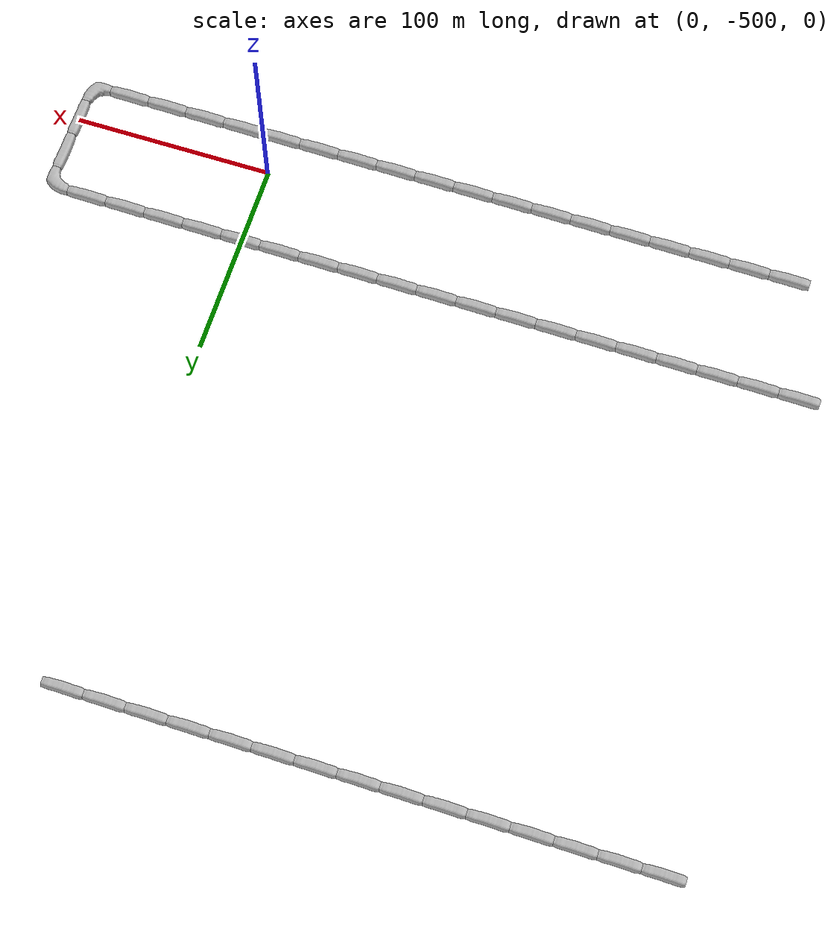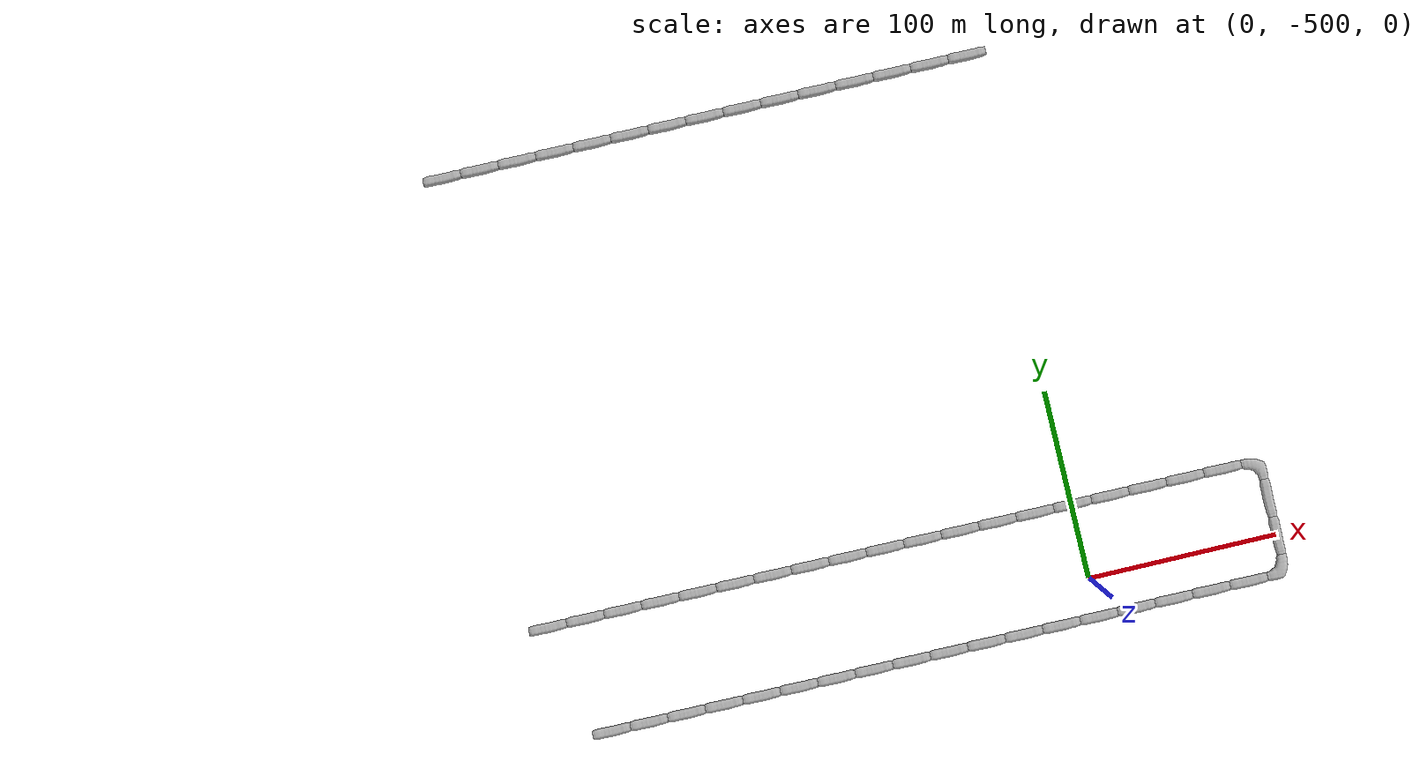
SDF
<sdf version="1.6">
 <world name="cave_32000_16">
  <include>
   <static>true</static>
   <name>cave_-13_-26</name>
   <pose>-260 -520 0 0 0 1.5707963267948966</pose>
   <uri>model://cave_straight_20m</uri>
  </include>
  <include>
   <static>true</static>
   <name>cave_-12_-26</name>
   <pose>-240 -520 0 0 0 1.5707963267948966</pose>
   <uri>model://cave_straight_20m</uri>
  </include>
  <include>
   <static>true</static>
   <name>cave_-11_-26</name>
   <pose>-220 -520 0 0 0 1.5707963267948966</pose>
   <uri>model://cave_straight_20m</uri>
  </include>
  <include>
   <static>true</static>
   <name>cave_-10_-26</name>
   <pose>-200 -520 0 0 0 1.5707963267948966</pose>
   <uri>model://cave_straight_20m</uri>
  </include>
  <include>
   <static>true</static>
   <name>cave_-9_-26</name>
   <pose>-180 -520 0 0 0 1.5707963267948966</pose>
   <uri>model://cave_straight_20m</uri>
  </include>
  <include>
   <static>true</static>
   <name>cave_-8_-26</name>
   <pose>-160 -520 0 0 0 1.5707963267948966</pose>
   <uri>model://cave_straight_20m</uri>
  </include>
  <include>
   <static>true</static>
   <name>cave_-7_-26</name>
   <pose>-140 -520 0 0 0 1.5707963267948966</pose>
   <uri>model://cave_straight_20m</uri>
  </include>
  <include>
   <static>true</static>
   <name>cave_-6_-26</name>
   <pose>-120 -520 0 0 0 1.5707963267948966</pose>
   <uri>model://cave_straight_20m</uri>
  </include>
  <include>
   <static>true</static>
   <name>cave_-5_-26</name>
   <pose>-100 -520 0 0 0 1.5707963267948966</pose>
   <uri>model://cave_straight_20m</uri>
  </include>
  <include>
   <static>true</static>
   <name>cave_-4_-26</name>
   <pose>-80 -520 0 0 0 1.5707963267948966</pose>
   <uri>model://cave_straight_20m</uri>
  </include>
  <include>
   <static>true</static>
   <name>cave_-3_-26</name>
   <pose>-60 -520 0 0 0 1.5707963267948966</pose>
   <uri>model://cave_straight_20m</uri>
  </include>
  <include>
   <static>true</static>
   <name>cave_-2_-26</name>
   <pose>-40 -520 0 0 0 1.5707963267948966</pose>
   <uri>model://cave_straight_20m</uri>
  </include>
  <include>
   <static>true</static>
   <name>cave_-1_-26</name>
   <pose>-20 -520 0 0 0 1.5707963267948966</pose>
   <uri>model://cave_straight_20m</uri>
  </include>
  <include>
   <static>true</static>
   <name>cave_0_-26</name>
   <pose>0 -520 0 0 0 1.5707963267948966</pose>
   <uri>model://cave_straight_20m</uri>
  </include>
  <include>
   <static>true</static>
   <name>cave_1_-26</name>
   <pose>20 -520 0 0 0 1.5707963267948966</pose>
   <uri>model://cave_straight_20m</uri>
  </include>
  <include>
   <static>true</static>
   <name>cave_2_-26</name>
   <pose>40 -520 0 0 0 1.5707963267948966</pose>
   <uri>model://cave_straight_20m</uri>
  </include>
  <include>
   <static>true</static>
   <name>cave_3_-26</name>
   <pose>60 -520 0 0 0 1.5707963267948966</pose>
   <uri>model://cave_straight_20m</uri>
  </include>
  <include>
   <static>true</static>
   <name>cave_4_-26</name>
   <pose>80 -520 0 0 0 1.5707963267948966</pose>
   <uri>model://cave_straight_20m</uri>
  </include>
  <include>
   <static>true</static>
   <name>cave_5_-26</name>
   <pose>100 -520 0 0 0 1.5707963267948966</pose>
   <uri>model://cave_L_20m</uri>
  </include>
  <include>
   <static>true</static>
   <name>cave_5_-25</name>
   <pose>100 -500 0 0 0 0.0</pose>
   <uri>model://cave_straight_20m</uri>
  </include>
  <include>
   <static>true</static>
   <name>cave_5_-24</name>
   <pose>100 -480 0 0 0 0.0</pose>
   <uri>model://cave_straight_20m</uri>
  </include>
  <include>
   <static>true</static>
   <name>cave_5_-23</name>
   <pose>100 -460 0 0 0 3.141592653589793</pose>
   <uri>model://cave_L_20m</uri>
  </include>
  <include>
   <static>true</static>
   <name>cave_4_-23</name>
   <pose>80 -460 0 0 0 1.5707963267948966</pose>
   <uri>model://cave_straight_20m</uri>
  </include>
  <include>
   <static>true</static>
   <name>cave_3_-23</name>
   <pose>60 -460 0 0 0 1.5707963267948966</pose>
   <uri>model://cave_straight_20m</uri>
  </include>
  <include>
   <static>true</static>
   <name>cave_2_-23</name>
   <pose>40 -460 0 0 0 1.5707963267948966</pose>
   <uri>model://cave_straight_20m</uri>
  </include>
  <include>
   <static>true</static>
   <name>cave_1_-23</name>
   <pose>20 -460 0 0 0 1.5707963267948966</pose>
   <uri>model://cave_straight_20m</uri>
  </include>
  <include>
   <static>true</static>
   <name>cave_0_-23</name>
   <pose>0 -460 0 0 0 1.5707963267948966</pose>
   <uri>model://cave_straight_20m</uri>
  </include>
  <include>
   <static>true</static>
   <name>cave_-1_-23</name>
   <pose>-20 -460 0 0 0 1.5707963267948966</pose>
   <uri>model://cave_straight_20m</uri>
  </include>
  <include>
   <static>true</static>
   <name>cave_-2_-23</name>
   <pose>-40 -460 0 0 0 1.5707963267948966</pose>
   <uri>model://cave_straight_20m</uri>
  </include>
  <include>
   <static>true</static>
   <name>cave_-3_-23</name>
   <pose>-60 -460 0 0 0 1.5707963267948966</pose>
   <uri>model://cave_straight_20m</uri>
  </include>
  <include>
   <static>true</static>
   <name>cave_-4_-23</name>
   <pose>-80 -460 0 0 0 1.5707963267948966</pose>
   <uri>model://cave_straight_20m</uri>
  </include>
  <include>
   <static>true</static>
   <name>cave_-5_-23</name>
   <pose>-100 -460 0 0 0 1.5707963267948966</pose>
   <uri>model://cave_straight_20m</uri>
  </include>
  <include>
   <static>true</static>
   <name>cave_-6_-23</name>
   <pose>-120 -460 0 0 0 1.5707963267948966</pose>
   <uri>model://cave_straight_20m</uri>
  </include>
  <include>
   <static>true</static>
   <name>cave_-7_-23</name>
   <pose>-140 -460 0 0 0 1.5707963267948966</pose>
   <uri>model://cave_straight_20m</uri>
  </include>
  <include>
   <static>true</static>
   <name>cave_-8_-23</name>
   <pose>-160 -460 0 0 0 1.5707963267948966</pose>
   <uri>model://cave_straight_20m</uri>
  </include>
  <include>
   <static>true</static>
   <name>cave_-9_-23</name>
   <pose>-180 -460 0 0 0 1.5707963267948966</pose>
   <uri>model://cave_straight_20m</uri>
  </include>
  <include>
   <static>true</static>
   <name>cave_-10_-23</name>
   <pose>-200 -460 0 0 0 1.5707963267948966</pose>
   <uri>model://cave_straight_20m</uri>
  </include>
  <include>
   <static>true</static>
   <name>cave_-11_-23</name>
   <pose>-220 -460 0 0 0 1.5707963267948966</pose>
   <uri>model://cave_straight_20m</uri>
  </include>
  <include>
   <static>true</static>
   <name>cave_-12_-23</name>
   <pose>-240 -460 0 0 0 1.5707963267948966</pose>
   <uri>model://cave_straight_20m</uri>
  </include>
  <include>
   <static>true</static>
   <name>cave_-13_-23</name>
   <pose>-260 -460 0 0 0 1.5707963267948966</pose>
   <uri>model://cave_straight_20m</uri>
  </include>
  <include>
   <static>true</static>
   <name>cave_-14_-23</name>
   <pose>-280 -460 0 0 0 1.5707963267948966</pose>
   <uri>model://cave_straight_20m</uri>
  </include>
  <include>
   <static>true</static>
   <name>cave_-14_-11</name>
   <pose>-280 -220 0 0 0 1.5707963267948966</pose>
   <uri>model://cave_straight_20m</uri>
  </include>
  <include>
   <static>true</static>
   <name>cave_-13_-11</name>
   <pose>-260 -220 0 0 0 1.5707963267948966</pose>
   <uri>model://cave_straight_20m</uri>
  </include>
  <include>
   <static>true</static>
   <name>cave_-12_-11</name>
   <pose>-240 -220 0 0 0 1.5707963267948966</pose>
   <uri>model://cave_straight_20m</uri>
  </include>
  <include>
   <static>true</static>
   <name>cave_-11_-11</name>
   <pose>-220 -220 0 0 0 1.5707963267948966</pose>
   <uri>model://cave_straight_20m</uri>
  </include>
  <include>
   <static>true</static>
   <name>cave_-10_-11</name>
   <pose>-200 -220 0 0 0 1.5707963267948966</pose>
   <uri>model://cave_straight_20m</uri>
  </include>
  <include>
   <static>true</static>
   <name>cave_-9_-11</name>
   <pose>-180 -220 0 0 0 1.5707963267948966</pose>
   <uri>model://cave_straight_20m</uri>
  </include>
  <include>
   <static>true</static>
   <name>cave_-8_-11</name>
   <pose>-160 -220 0 0 0 1.5707963267948966</pose>
   <uri>model://cave_straight_20m</uri>
  </include>
  <include>
   <static>true</static>
   <name>cave_-7_-11</name>
   <pose>-140 -220 0 0 0 1.5707963267948966</pose>
   <uri>model://cave_straight_20m</uri>
  </include>
  <include>
   <static>true</static>
   <name>cave_-6_-11</name>
   <pose>-120 -220 0 0 0 1.5707963267948966</pose>
   <uri>model://cave_straight_20m</uri>
  </include>
  <include>
   <static>true</static>
   <name>cave_-5_-11</name>
   <pose>-100 -220 0 0 0 1.5707963267948966</pose>
   <uri>model://cave_straight_20m</uri>
  </include>
  <include>
   <static>true</static>
   <name>cave_-4_-11</name>
   <pose>-80 -220 0 0 0 1.5707963267948966</pose>
   <uri>model://cave_straight_20m</uri>
  </include>
  <include>
   <static>true</static>
   <name>cave_-3_-11</name>
   <pose>-60 -220 0 0 0 1.5707963267948966</pose>
   <uri>model://cave_straight_20m</uri>
  </include>
  <include>
   <static>true</static>
   <name>cave_-2_-11</name>
   <pose>-40 -220 0 0 0 1.5707963267948966</pose>
   <uri>model://cave_straight_20m</uri>
  </include>
  <include>
   <static>true</static>
   <name>cave_-1_-11</name>
   <pose>-20 -220 0 0 0 1.5707963267948966</pose>
   <uri>model://cave_straight_20m</uri>
  </include>
  <include>
   <static>true</static>
   <name>cave_0_-11</name>
   <pose>0 -220 0 0 0 1.5707963267948966</pose>
   <uri>model://cave_straight_20m</uri>
  </include>
 </world>
</sdf>
